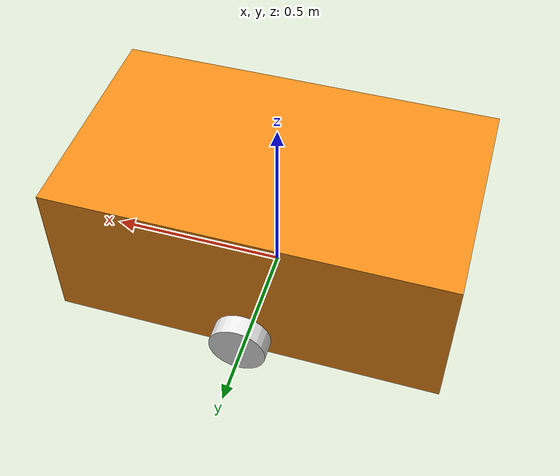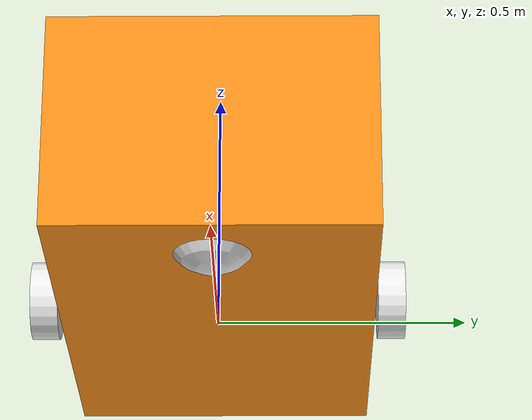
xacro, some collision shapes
<?xml version="1.0"?>

<robot xmlns:xacro="http://www.ros.org/wiki/xacro">
  <xacro:property name="mesh_path" value="$(find amr_proto_diff_drive)/meshes"/>
  <xacro:property name="PI" value="3.1415926535897931"/>
  <xacro:property name="wheel_radius" value="0.07915"/> <!-- 158.3 mm / 2 / 1000 -->
  <xacro:property name="wheel_length" value="0.0552"/>   <!-- 55.2 mm / 1000 -->
  <xacro:property name="wheel_mass" value="1.0"/>
  <xacro:property name="wheel_inertia" value="${(1/2.0) * wheel_mass * wheel_radius**2}"/>

  <xacro:property name="chassis_x" value="1.08"/>  <!-- 108 cm * 0.01 -->
  <xacro:property name="chassis_y" value="0.63"/>
  <xacro:property name="chassis_z" value="0.43"/>
  <xacro:property name="chassis_mass" value="5.0"/>
  <xacro:property name="chassis_ixx" value="${(1.0/12.0) * chassis_mass * (chassis_y**2 + chassis_z**2)}"/>
  <xacro:property name="chassis_iyy" value="${(1.0/12.0) * chassis_mass * (chassis_x**2 + chassis_z**2)}"/>
  <xacro:property name="chassis_izz" value="${(1.0/12.0) * chassis_mass * (chassis_x**2 + chassis_y**2)}"/>

  <xacro:property name="caster_radius" value="0.1"/>
  <xacro:property name="caster_mass" value="0.5"/>
  <xacro:property name="caster_inertia" value="${(2.0/5.0) * caster_mass * caster_radius**2}"/>
  <link name="base_footprint"/>

  <!-- Base Link -->
  <link name="chassis">
    <collision>
      <origin xyz="0 0 0" rpy="0 0 0"/>
      <geometry>
        <box size="${chassis_x} ${chassis_y} ${chassis_z}"/>
      </geometry>
    </collision>

    <visual>
      <origin xyz="0 0 0.0" rpy="-1.57 0 0"/>
      <geometry>
         <mesh filename="file://${mesh_path}/chassis4.stl" scale="0.01 0.01 0.01"/>
      </geometry>
      <material name="orange"/>
    </visual>

    <inertial>
      <origin xyz="0 0 0" rpy="0 0 0"/>
      <mass value="${chassis_mass}"/>
      <inertia
        ixx="${chassis_ixx}" ixy="0.0" ixz="0.0"
        iyy="${chassis_iyy}" iyz="0.0"
        izz="${chassis_izz}"/>
    </inertial>
  </link>

  <!-- left wheel Link -->
  <link name="left_wheel">
    <collision>
      <geometry>
        <sphere radius="${wheel_radius}"/>
      </geometry>
    </collision>

    <visual>
      <geometry>
        <cylinder radius="${wheel_radius}" length="${wheel_length}"/>
      </geometry>
      <origin xyz="0 0 0" rpy="1.57 0 0"/>
      <material name="white"/>
    </visual>

    <inertial>
      <mass value="${wheel_mass}"/>
      <inertia
        ixx="${wheel_inertia}" iyy="${(1/12.0)*wheel_mass*(3*wheel_radius**2 + wheel_length**2)}" izz="${wheel_inertia}"
        ixy="0.0" ixz="0.0" iyz="0.0"/>
      </inertial>
  </link>

  <!-- right wheel Link -->
  <link name="right_wheel">
    <collision>
      <geometry>
        <sphere radius="${wheel_radius}"/>
      </geometry>
    </collision>

    <visual>
      <geometry>
        <cylinder radius="${wheel_radius}" length="${wheel_length}"/>
      </geometry>
      <origin xyz="0 0 0" rpy="1.57 0 0"/>
      <material name="white"/>
    </visual>

    <inertial>
      <mass value="${wheel_mass}"/>
      <inertia
        ixx="${wheel_inertia}" iyy="${(1/12.0)*wheel_mass*(3*wheel_radius**2 + wheel_length**2)}" izz="${wheel_inertia}"
        ixy="0.0" ixz="0.0" iyz="0.0"/>
      </inertial>
  </link>

  <!-- caster frontal wheel Link -->
  <link name="caster">
    <collision>
      <geometry>
        <sphere radius="${caster_radius}"/>
      </geometry>
    </collision>

    <visual>
      <geometry>
        <sphere radius="${caster_radius}"/>
      </geometry>
      <material name="white"/>
    </visual>

    <inertial>
      <origin xyz="0 0 0" rpy="0 0 0"/>
      <mass value="${caster_mass}"/>
      <inertia
      ixx="${caster_inertia}" ixy="0.0" ixz="0.0"
      iyy="${caster_inertia}" iyz="0.0"
      izz="${caster_inertia}"/>
    </inertial>
  </link>

  <gazebo reference="caster">
      <mu1 value="0.01"/>
      <mu2 value="0.01"/>
  </gazebo>
  <!-- JOINT    -->

  <joint name="base_footprint_joint" type="fixed">
    <origin xyz="0 0 0.2" rpy="0 0 0"/>
    <parent link="base_footprint"/>
    <child link="chassis"/>
  </joint>

  <joint name="caster_joint" type="fixed">
    <origin xyz="0.4 0 -0.15" rpy="0 0 0"/>
    <parent link="chassis"/>
    <child link="caster"/>
  </joint>

  <joint name="left_wheel_joint" type="continuous">
    <origin xyz="0 0.35 -0.15" rpy="0 0 0"/>
    <parent link="chassis"/>
    <child link="left_wheel"/>
    <axis xyz="0 1 0"/>
  </joint>

  <joint name="right_wheel_joint" type="continuous">
    <origin xyz="0 -0.35 -0.15" rpy="0 0 0"/>
    <parent link="chassis"/>
    <child link="right_wheel"/>
    <axis xyz="0 1 0"/>
  </joint>

</robot>
